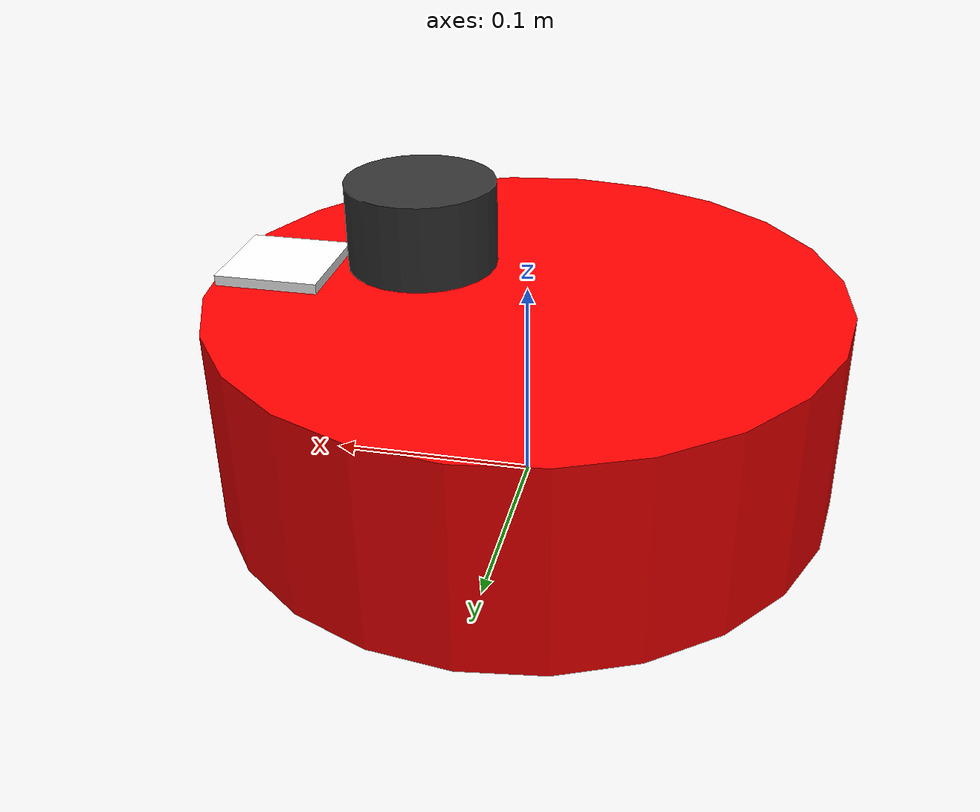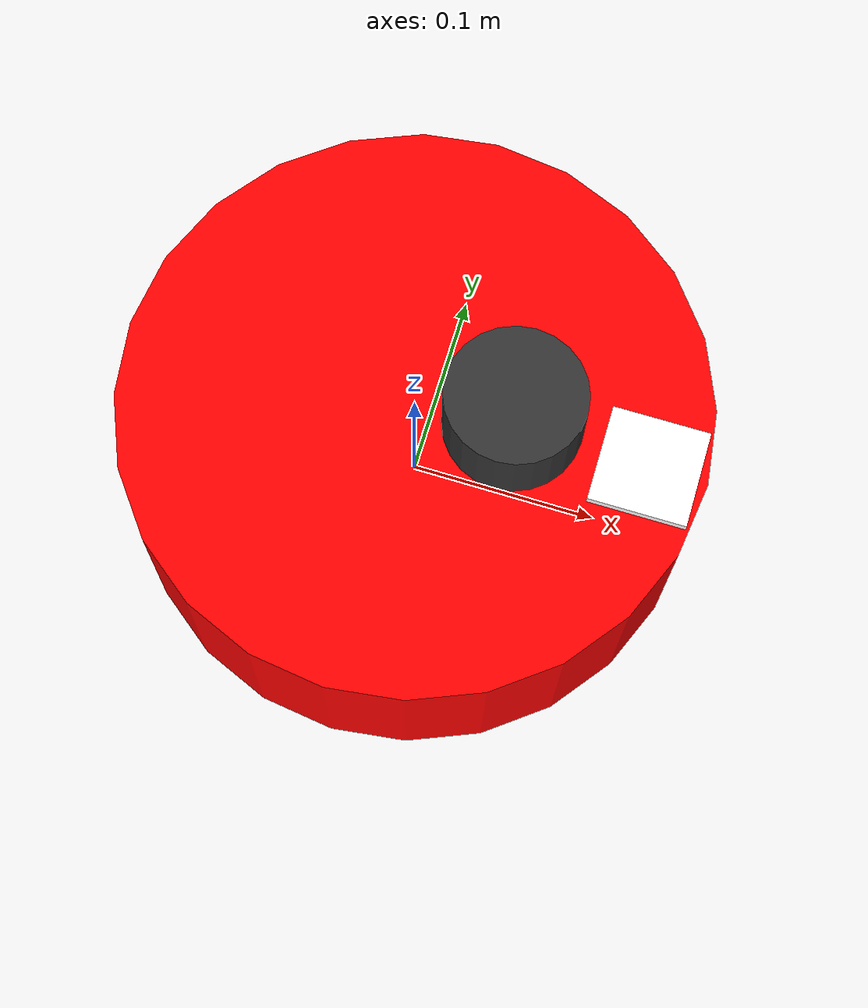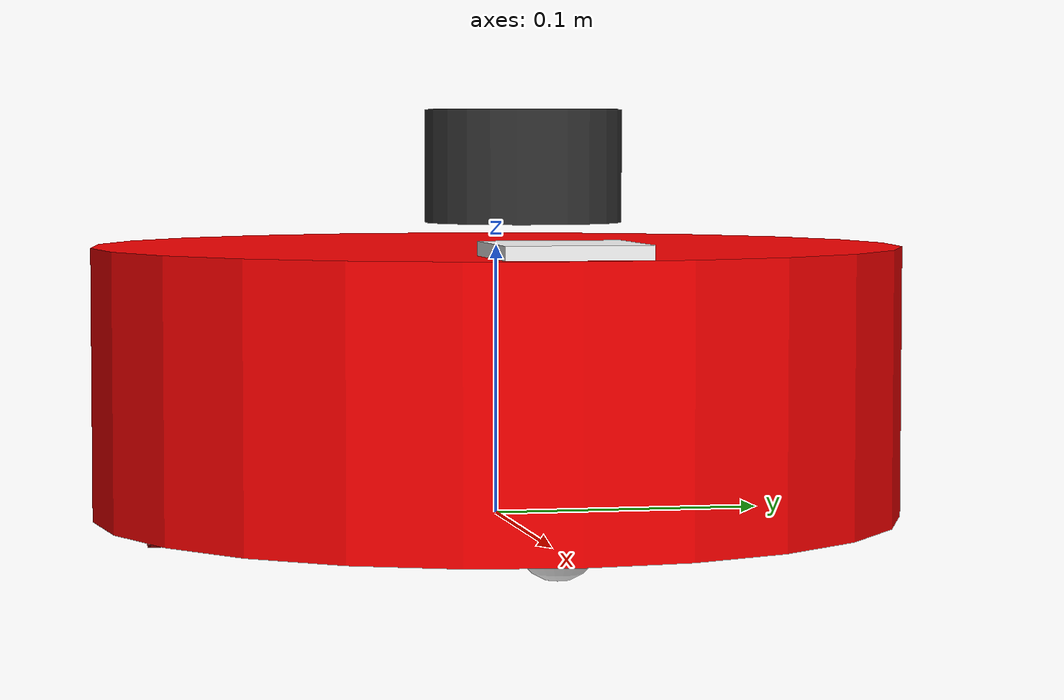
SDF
<?xml version="1.0" ?>
<sdf version="1.9">
    <model name='homerobot'>
        <static>0</static>
        <pose>0 0 0.05 0 0 0</pose>

        <!-- Base Link -->
        <link name='base_link'>
            <inertial>
                <mass>2.0</mass>
                <inertia>
                    <ixx>0.01</ixx>
                    <ixy>0</ixy>
                    <ixz>0</ixz>
                    <iyy>0.01</iyy>
                    <iyz>0</iyz>
                    <izz>0.02</izz>
                </inertia>
            </inertial>
            <collision name='collision'>
                <geometry>
                    <cylinder>
                        <radius>0.15</radius>
                        <length>0.1</length>
                    </cylinder>
                </geometry>
            </collision>
            <visual name='visual'>
                <geometry>
                    <cylinder>
                        <radius>0.15</radius>
                        <length>0.1</length>
                    </cylinder>
                </geometry>
                <material>
                    <ambient>0.8 0.0 0.0 1</ambient>
                    <diffuse>1.0 0.0 0.0 1</diffuse>
                    <specular>0.5 0.5 0.5 1</specular>
                </material>
            </visual>
            <!-- Front Indicator (White box) -->
            <visual name='front_indicator'>
                <pose>0.12 0 0.05 0 0 0</pose>
                <geometry>
                    <box>
                        <size>0.05 0.05 0.01</size>
                    </box>
                </geometry>
                <material>
                    <ambient>1 1 1 1</ambient>
                    <diffuse>1 1 1 1</diffuse>
                </material>
            </visual>
            <!-- IMU Sensor on base_link -->
            <sensor name='imu_sensor' type='imu'>
                <always_on>1</always_on>
                <update_rate>100</update_rate>
                <visualize>true</visualize>
                <topic>/model/homerobot/imu</topic>
            </sensor>
        </link>

        <!-- Left Wheel -->
        <link name='left_wheel'>
            <pose relative_to='base_link'>0 0.12 -0.02 1.5708 0 0</pose>
            <inertial>
                <mass>0.2</mass>
                <inertia>
                    <ixx>0.0001</ixx>
                    <ixy>0</ixy>
                    <ixz>0</ixz>
                    <iyy>0.0001</iyy>
                    <iyz>0</iyz>
                    <izz>0.0002</izz>
                </inertia>
            </inertial>
            <collision name='collision'>
                <geometry>
                    <cylinder>
                        <radius>0.0399</radius>
                        <length>0.02</length>
                    </cylinder>
                </geometry>
                <surface>
                    <friction>
                        <ode>
                            <mu>1.0</mu>
                            <mu2>1.0</mu2>
                        </ode>
                    </friction>
                </surface>
            </collision>
            <visual name='visual'>
                <geometry>
                    <cylinder>
                        <radius>0.0399</radius>
                        <length>0.02</length>
                    </cylinder>
                </geometry>
                <material>
                    <ambient>0.4 0.0 0.0 1</ambient>
                    <diffuse>0.5 0.0 0.0 1</diffuse>
                    <specular>0.5 0.5 0.5 1</specular>
                </material>
            </visual>
        </link>

        <!-- Right Wheel -->
        <link name='right_wheel'>
            <pose relative_to='base_link'>0 -0.12 -0.02 1.5708 0 0</pose>
            <inertial>
                <mass>0.2</mass>
                <inertia>
                    <ixx>0.0001</ixx>
                    <ixy>0</ixy>
                    <ixz>0</ixz>
                    <iyy>0.0001</iyy>
                    <iyz>0</iyz>
                    <izz>0.0002</izz>
                </inertia>
            </inertial>
            <collision name='collision'>
                <geometry>
                    <cylinder>
                        <radius>0.0399</radius>
                        <length>0.02</length>
                    </cylinder>
                </geometry>
                <surface>
                    <friction>
                        <ode>
                            <mu>1.0</mu>
                            <mu2>1.0</mu2>
                        </ode>
                    </friction>
                </surface>
            </collision>
            <visual name='visual'>
                <geometry>
                    <cylinder>
                        <radius>0.0399</radius>
                        <length>0.02</length>
                    </cylinder>
                </geometry>
                <material>
                    <ambient>0.4 0.0 0.0 1</ambient>
                    <diffuse>0.5 0.0 0.0 1</diffuse>
                    <specular>0.5 0.5 0.5 1</specular>
                </material>
            </visual>
        </link>

        <!-- Castor Wheel -->
        <link name='castor'>
            <pose relative_to='base_link'>0.11 0 -0.045 0 0 0</pose>
            <inertial>
                <mass>0.1</mass>
                <inertia>
                    <ixx>0.00001</ixx>
                    <ixy>0</ixy>
                    <ixz>0</ixz>
                    <iyy>0.00001</iyy>
                    <iyz>0</iyz>
                    <izz>0.00001</izz>
                </inertia>
            </inertial>
            <collision name='collision'>
                <geometry>
                    <sphere>
                        <radius>0.015</radius>
                    </sphere>
                </geometry>
                <surface>
                    <friction>
                        <ode>
                            <mu>0.1</mu>
                            <mu2>0.1</mu2>
                        </ode>
                    </friction>
                </surface>
            </collision>
            <visual name='visual'>
                <geometry>
                    <sphere>
                        <radius>0.015</radius>
                    </sphere>
                </geometry>
                <material>
                    <ambient>0.8 0.8 0.8 1</ambient>
                    <diffuse>0.8 0.8 0.8 1</diffuse>
                </material>
            </visual>
        </link>

        <!-- Lidar Link -->
        <link name='lidar_link'>
            <pose relative_to='base_link'>0.05 0 0.08 0 0 0</pose>
            <inertial>
                <mass>0.1</mass>
                <inertia>
                    <ixx>0.0001</ixx>
                    <ixy>0</ixy>
                    <ixz>0</ixz>
                    <iyy>0.0001</iyy>
                    <iyz>0</iyz>
                    <izz>0.0001</izz>
                </inertia>
            </inertial>
            <visual name='visual'>
                <geometry>
                    <cylinder>
                        <radius>0.035</radius>
                        <length>0.04</length>
                    </cylinder>
                </geometry>
                <material>
                    <ambient>0 0 0 1</ambient>
                    <diffuse>0.2 0.2 0.2 1</diffuse>
                </material>
            </visual>
            <sensor name='lidar' type='gpu_lidar'>
                <always_on>1</always_on>
                <update_rate>5</update_rate>
                <topic>/model/homerobot/lidar</topic>
                <lidar>
                    <scan>
                        <horizontal>
                            <samples>180</samples>
                            <resolution>1</resolution>
                            <min_angle>-3.14159</min_angle>
                            <max_angle>3.14159</max_angle>
                        </horizontal>
                    </scan>
                    <range>
                        <min>0.15</min>
                        <max>12.0</max>
                        <resolution>0.01</resolution>
                    </range>
                    <noise>
                        <type>gaussian</type>
                        <mean>0.0</mean>
                        <stddev>0.01</stddev>
                    </noise>
                </lidar>
                <always_on>1</always_on>
                <visualize>true</visualize>
            </sensor>
        </link>

        <!-- Joints -->
        <joint name='left_wheel_joint' type='revolute'>
            <parent>base_link</parent>
            <child>left_wheel</child>
            <axis>
                <xyz expressed_in='__model__'>0 1 0</xyz>
                <limit>
                    <lower>-1e16</lower>
                    <upper>1e16</upper>
                </limit>
            </axis>
        </joint>

        <joint name='right_wheel_joint' type='revolute'>
            <parent>base_link</parent>
            <child>right_wheel</child>
            <axis>
                <xyz expressed_in='__model__'>0 1 0</xyz>
                <limit>
                    <lower>-1e16</lower>
                    <upper>1e16</upper>
                </limit>
            </axis>
        </joint>

        <joint name='castor_joint' type='ball'>
            <parent>base_link</parent>
            <child>castor</child>
        </joint>

        <joint name='lidar_joint' type='fixed'>
            <parent>base_link</parent>
            <child>lidar_link</child>
        </joint>

        <!-- Joint Effort (Torque) Control -->
        <plugin
            filename="gz-sim-apply-joint-force-system"
            name="gz::sim::systems::ApplyJointForce">
            <joint_name>left_wheel_joint</joint_name>
        </plugin>
        <plugin
            filename="gz-sim-apply-joint-force-system"
            name="gz::sim::systems::ApplyJointForce">
            <joint_name>right_wheel_joint</joint_name>
        </plugin>

        <!-- Joint State Publisher for Encoders -->
        <plugin
            filename="gz-sim-joint-state-publisher-system"
            name="gz::sim::systems::JointStatePublisher">
            <topic>/model/homerobot/joint_state</topic>
            <joint_name>left_wheel_joint</joint_name>
            <joint_name>right_wheel_joint</joint_name>
        </plugin>

    </model>
</sdf>
